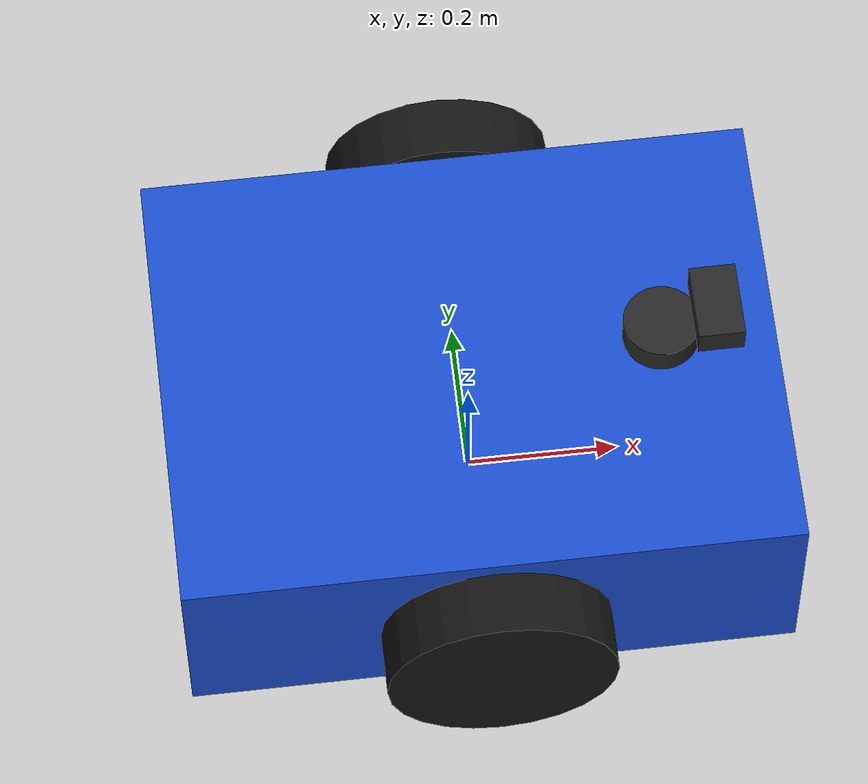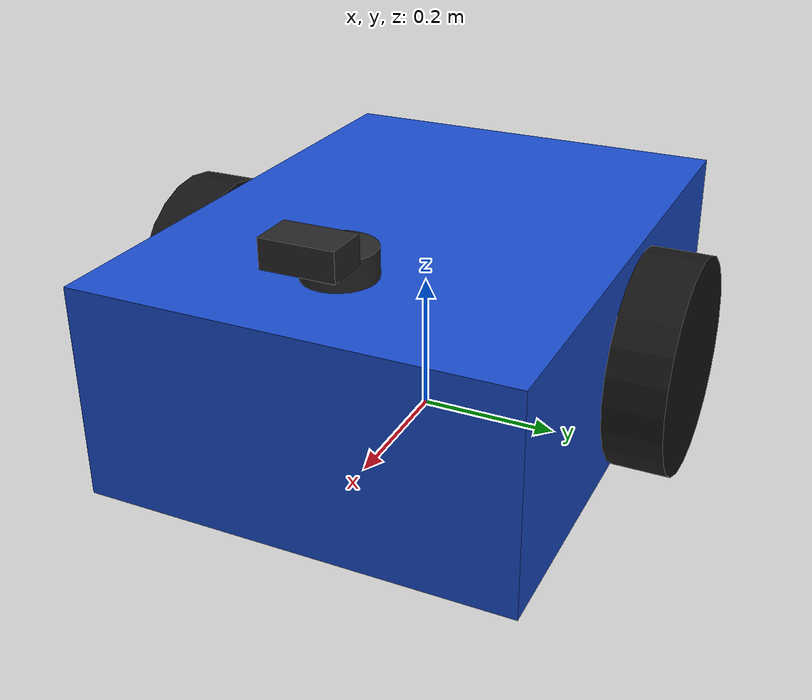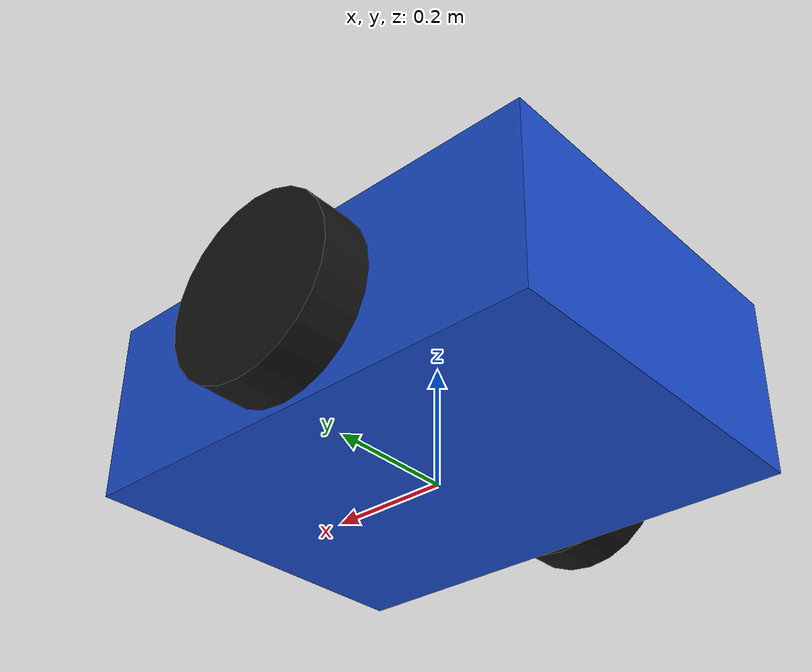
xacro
<?xml version="1.0"?>
<robot xmlns:xacro="http://www.ros.org/wiki/xacro" name="wolfbot">

  <!-- MATERIALS                                                           -->
  <material name="chassis_blue">
    <color rgba="0.1 0.3 0.8 1.0"/>
  </material>

  <material name="wheel_black">
    <color rgba="0.08 0.08 0.08 1.0"/>
  </material>

  <material name="hardware_gray">
    <color rgba="0.5 0.5 0.5 1.0"/>
  </material>

  <material name="sensor_black">
    <color rgba="0.15 0.15 0.15 1.0"/>
  </material>

  <material name="lens_glass">
    <color rgba="0.2 0.7 0.9 0.8"/>
  </material>

  <!-- BASE FOOTPRINT (Ground projection for 2D SLAM and Navigation)       -->
  <link name="base_footprint"/>

  <joint name="base_footprint_joint" type="fixed">
    <parent link="base_footprint"/>
    <child link="base_link"/>
    <origin xyz="0 0 0.15" rpy="0 0 0"/>
  </joint>

  <!-- BASE LINK (Main robot chassis)                                      -->
  <link name="base_link">
    <visual>
      <origin xyz="0 0 0" rpy="0 0 0"/>
      <geometry>
        <box size="0.80 0.60 0.30"/>
      </geometry>
      <material name="chassis_blue"/>
    </visual>
    <collision>
      <origin xyz="0 0 0" rpy="0 0 0"/>
      <geometry>
        <box size="0.80 0.60 0.30"/>
      </geometry>
    </collision>
    <inertial>
      <origin xyz="0 0 0" rpy="0 0 0"/>
      <mass value="12.0"/>
      <inertia ixx="0.45" ixy="0.0" ixz="0.0"
               iyy="0.73" iyz="0.0"
               izz="0.98"/>
    </inertial>
  </link>

  <!-- LEFT DRIVE WHEEL                                                    -->
  <link name="left_wheel">
    <visual>
      <origin xyz="0 0 0" rpy="1.570796 0 0"/>
      <geometry>
        <cylinder radius="0.15" length="0.08"/>
      </geometry>
      <material name="wheel_black"/>
    </visual>
    <collision>
      <origin xyz="0 0 0" rpy="1.570796 0 0"/>
      <geometry>
        <cylinder radius="0.15" length="0.08"/>
      </geometry>
    </collision>
    <inertial>
      <origin xyz="0 0 0" rpy="1.570796 0 0"/>
      <mass value="1.5"/>
      <inertia ixx="0.0092" ixy="0.0" ixz="0.0"
               iyy="0.0092" iyz="0.0"
               izz="0.0168"/>
    </inertial>
  </link>

  <joint name="left_wheel_joint" type="continuous">
    <parent link="base_link"/>
    <child link="left_wheel"/>
    <origin xyz="0 0.35 0.0" rpy="0 0 0"/>
    <axis xyz="0 1 0"/>
  </joint>

  <!-- RIGHT DRIVE WHEEL                                                   -->
  <link name="right_wheel">
    <visual>
      <origin xyz="0 0 0" rpy="1.570796 0 0"/>
      <geometry>
        <cylinder radius="0.15" length="0.08"/>
      </geometry>
      <material name="wheel_black"/>
    </visual>
    <collision>
      <origin xyz="0 0 0" rpy="1.570796 0 0"/>
      <geometry>
        <cylinder radius="0.15" length="0.08"/>
      </geometry>
    </collision>
    <inertial>
      <origin xyz="0 0 0" rpy="1.570796 0 0"/>
      <mass value="1.5"/>
      <inertia ixx="0.0092" ixy="0.0" ixz="0.0"
               iyy="0.0092" iyz="0.0"
               izz="0.0168"/>
    </inertial>
  </link>

  <joint name="right_wheel_joint" type="continuous">
    <parent link="base_link"/>
    <child link="right_wheel"/>
    <origin xyz="0 -0.35 0.0" rpy="0 0 0"/>
    <axis xyz="0 1 0"/>
  </joint>

  <!-- REAR CASTER SUPPORT                                                 -->
  <link name="rear_caster">
    <visual>
      <origin xyz="0 0 0" rpy="0 0 0"/>
      <geometry>
        <sphere radius="0.07"/>
      </geometry>
      <material name="hardware_gray"/>
    </visual>
    <collision>
      <origin xyz="0 0 0" rpy="0 0 0"/>
      <geometry>
        <sphere radius="0.07"/>
      </geometry>
    </collision>
    <inertial>
      <origin xyz="0 0 0" rpy="0 0 0"/>
      <mass value="0.5"/>
      <inertia ixx="0.001" ixy="0.0" ixz="0.0"
               iyy="0.001" iyz="0.0"
               izz="0.001"/>
    </inertial>
  </link>

  <joint name="rear_caster_joint" type="fixed">
    <parent link="base_link"/>
    <child link="rear_caster"/>
    <origin xyz="-0.30 0.0 -0.08" rpy="0 0 0"/>
  </joint>

  <!-- FRONT CASTER SUPPORT                                                -->
  <link name="front_caster">
    <visual>
      <origin xyz="0 0 0" rpy="0 0 0"/>
      <geometry>
        <sphere radius="0.07"/>
      </geometry>
      <material name="hardware_gray"/>
    </visual>
    <collision>
      <origin xyz="0 0 0" rpy="0 0 0"/>
      <geometry>
        <sphere radius="0.07"/>
      </geometry>
    </collision>
    <inertial>
      <origin xyz="0 0 0" rpy="0 0 0"/>
      <mass value="0.5"/>
      <inertia ixx="0.001" ixy="0.0" ixz="0.0"
               iyy="0.001" iyz="0.0"
               izz="0.001"/>
    </inertial>
  </link>

  <joint name="front_caster_joint" type="fixed">
    <parent link="base_link"/>
    <child link="front_caster"/>
    <origin xyz="0.30 0.0 -0.08" rpy="0 0 0"/>
  </joint>

  <!-- 2D LIDAR SENSOR (Standard physical LiDAR mount)                     -->
  <link name="lidar_link">
    <visual>
      <origin xyz="0 0 0" rpy="0 0 0"/>
      <geometry>
        <cylinder radius="0.05" length="0.04"/>
      </geometry>
      <material name="sensor_black"/>
    </visual>
    <collision>
      <origin xyz="0 0 0" rpy="0 0 0"/>
      <geometry>
        <cylinder radius="0.05" length="0.04"/>
      </geometry>
    </collision>
  </link>

  <joint name="lidar_joint" type="fixed">
    <parent link="base_link"/>
    <child link="lidar_link"/>
    <origin xyz="0.25 0.0 0.18" rpy="0 0 0"/>
  </joint>

  <!-- CAMERA SENSOR (Front optical mount)                                 -->
  <link name="camera_link">
    <visual>
      <origin xyz="0 0 0" rpy="0 0 0"/>
      <geometry>
        <box size="0.06 0.10 0.04"/>
      </geometry>
      <material name="sensor_black"/>
    </visual>
    <collision>
      <origin xyz="0 0 0" rpy="0 0 0"/>
      <geometry>
        <box size="0.06 0.10 0.04"/>
      </geometry>
    </collision>
  </link>

  <joint name="camera_joint" type="fixed">
    <parent link="base_link"/>
    <child link="camera_link"/>
    <origin xyz="0.32 0.0 0.22" rpy="0 0 0"/>
  </joint>

  <!-- Standard ROS Optical Frame (Z forward, X right, Y down) -->
  <link name="camera_optical_link"/>

  <joint name="camera_optical_joint" type="fixed">
    <parent link="camera_link"/>
    <child link="camera_optical_link"/>
    <origin xyz="0 0 0" rpy="-1.570796 0 -1.570796"/>
  </joint>

</robot>
